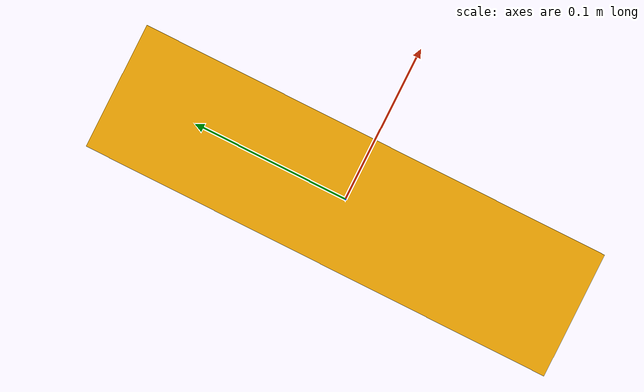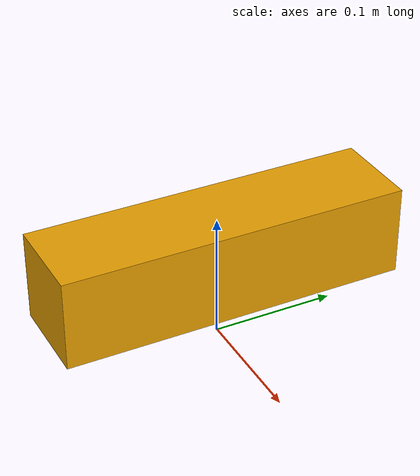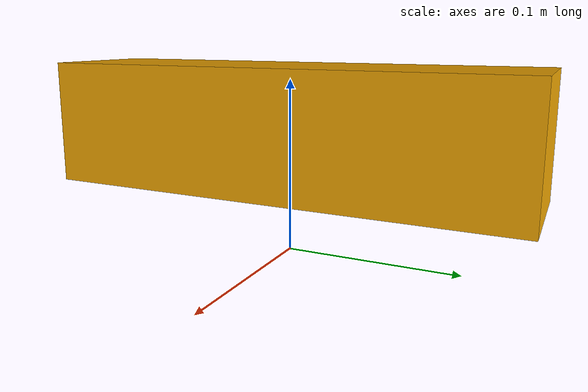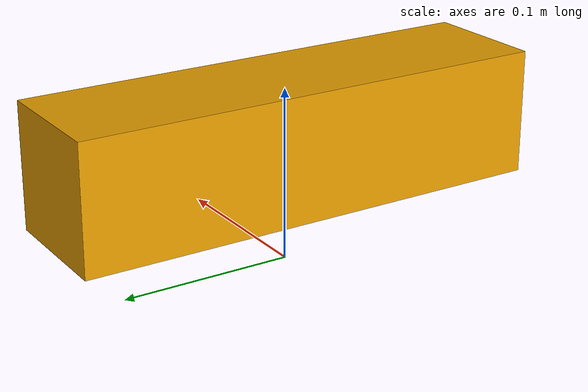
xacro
<?xml version="1.0"?>
<robot xmlns:xacro="http://www.ros.org/wiki/xacro" name="kinect">

  <xacro:property name="depthKinect" value="0.073000"/>
  <xacro:property name="widthKinect" value="0.276000"/>
  <xacro:property name="heightKinect" value="0.072000"/>
  <xacro:property name="densityKinect" value="1000"/>

  <link name="kinect">
    <visual>
      <geometry>
        <box size="${depthKinect} ${widthKinect} ${heightKinect}"/>
      </geometry>
      <origin rpy="0 0 0" xyz="0 0 ${heightKinect}"/>
    </visual>

    <collision>
      <geometry>
        <box size="${depthKinect} ${widthKinect} ${heightKinect}"/>
      </geometry>
      <origin rpy="0 0 0" xyz="0 0 ${heightKinect}"/>
    </collision>

    <inertial>
      <mass value="${depthKinect}*${widthKinect}*${heightKinect}*${densityKinect}"/>
      <inertia
        ixx="${(depthKinect*widthKinect*heightKinect*densityKinect)/12*((heightKinect*heightKinect)+(depthKinect*depthKinect))}"
        ixy="0"
        ixz="0"
        iyy="${(depthKinect*widthKinect*heightKinect*densityKinect)/12*((widthKinect*widthKinect)+(depthKinect*depthKinect))}"
        iyz="0"
        izz="${(depthKinect*widthKinect*heightKinect*densityKinect)/12*((widthKinect*widthKinect)+(heightKinect*heightKinect))}"/>
    </inertial>
  </link>

  <gazebo reference="kinect">
  <sensor name="kinect_camera" type="depth">
    <update_rate>20</update_rate>
    <camera>
      <horizontal_fov>1.047198</horizontal_fov>
      <image>
        <width>640</width>
        <height>480</height>
        <format>R8G8B8</format>
      </image>
      <clip>
        <near>0.05</near>
        <far>3</far>
      </clip>
    </camera>
    <plugin name="kinect_controller" filename="libgazebo_ros_openni_kinect.so">
      <baseline>0.2</baseline>
      <alwaysOn>true</alwaysOn>
      <updateRate>1.0</updateRate>
      <cameraName>kinect_camera_ir</cameraName>
      <imageTopicName>/kinect_camera/color/image_raw</imageTopicName>
      <cameraInfoTopicName>/kinect_camera/color/camera_info</cameraInfoTopicName>
      <depthImageTopicName>/kinect_camera/depth/image_raw</depthImageTopicName>
      <depthImageInfoTopicName>/$kinect_camera/depth/camera_info</depthImageInfoTopicName>
      <pointCloudTopicName>/kinect_camera/depth/points</pointCloudTopicName>
      <frameName>camera_link</frameName>
      <pointCloudCutoff>0.5</pointCloudCutoff>
      <pointCloudCutoffMax>3.0</pointCloudCutoffMax>
      <distortionK1>0.00000001</distortionK1>
      <distortionK2>0.00000001</distortionK2>
      <distortionK3>0.00000001</distortionK3>
      <distortionT1>0.00000001</distortionT1>
      <distortionT2>0.00000001</distortionT2>
      <CxPrime>0</CxPrime>
      <Cx>0</Cx>
      <Cy>0</Cy>
      <focalLength>0</focalLength>
      <hackBaseline>0</hackBaseline>
    </plugin>
  </sensor>
</gazebo>

</robot>
